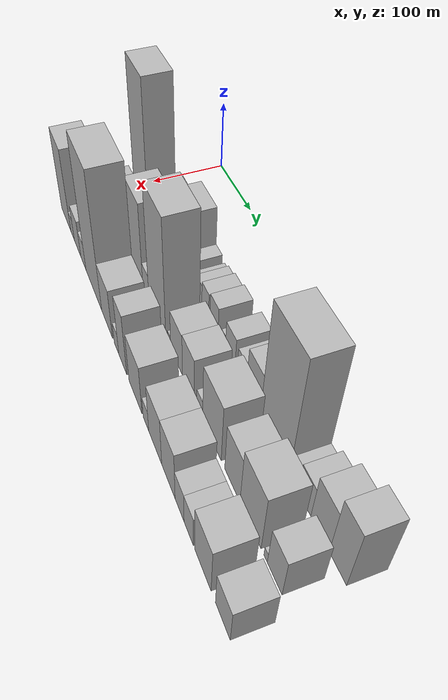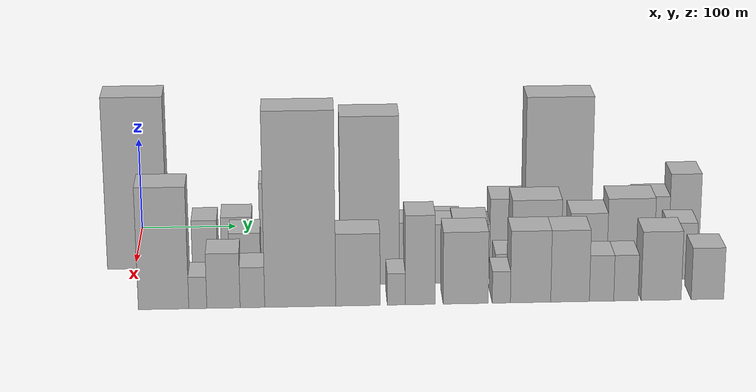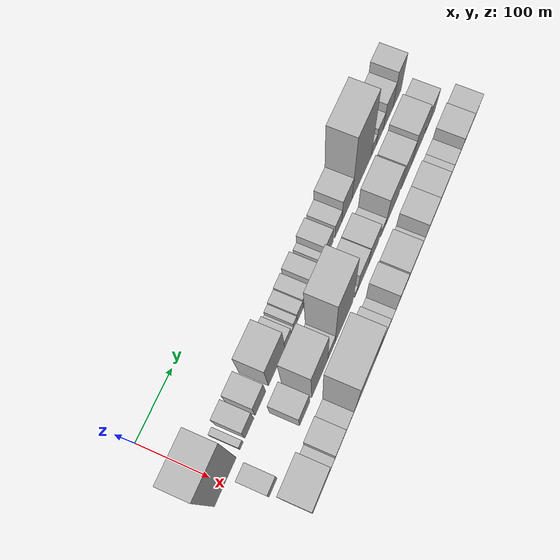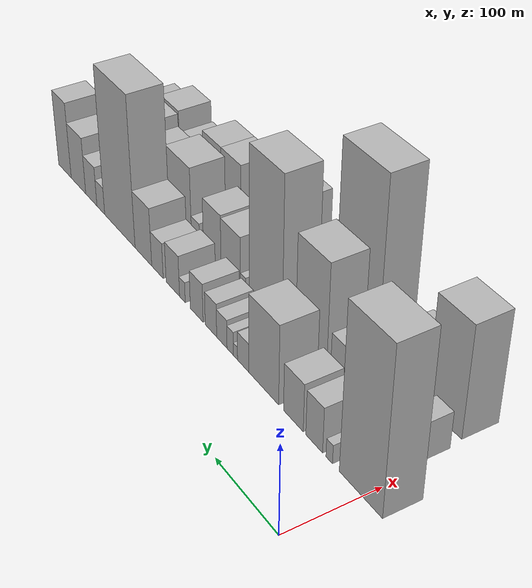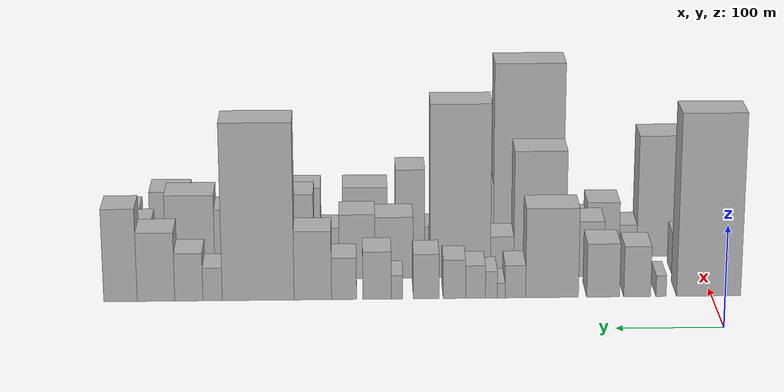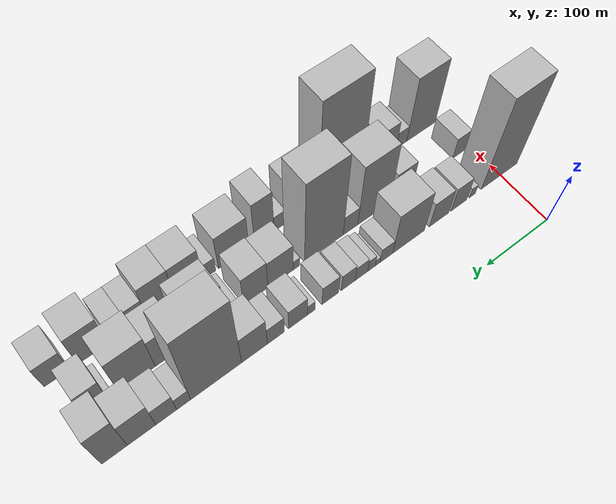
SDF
<sdf version="1.6">
 <world name="default">
  <model name="building_15">
   <static>1</static>
   <pose>100.0000 2.7650 0 0.000000 0.000000 0.000000</pose>
   <link name="link">
    <pose>0 0 91.50 0 0 0</pose>
    <collision name="collision"><geometry><box><size>40.0000 61.5131 183.0000</size></box></geometry></collision>
    <visual name="visual">
     <cast_shadows>0</cast_shadows>
     <geometry><box><size>40.0000 61.5131 183.0000</size></box></geometry>
     <material>
      <script>
       <uri>model://HANNAS_wall/materials/scripts</uri>
       <uri>model://HANNAS_wall/materials/textures</uri>
       <name>vrc/HANNAS_wall</name>
      </script>
     </material>
    </visual>
   </link>
  </model>
  <model name="building_16">
   <static>1</static>
   <pose>100.0000 48.4366 0 0.000000 0.000000 0.000000</pose>
   <link name="link">
    <pose>0 0 10.50 0 0 0</pose>
    <collision name="collision"><geometry><box><size>40.0000 9.8300 21.0000</size></box></geometry></collision>
    <visual name="visual">
     <cast_shadows>0</cast_shadows>
     <geometry><box><size>40.0000 9.8300 21.0000</size></box></geometry>
     <material>
      <script>
       <uri>model://HANNAS_wall/materials/scripts</uri>
       <uri>model://HANNAS_wall/materials/textures</uri>
       <name>vrc/HANNAS_wall</name>
      </script>
     </material>
    </visual>
   </link>
  </model>
  <model name="building_17">
   <static>1</static>
   <pose>100.0000 71.2778 0 0.000000 0.000000 0.000000</pose>
   <link name="link">
    <pose>0 0 25.50 0 0 0</pose>
    <collision name="collision"><geometry><box><size>40.0000 25.8524 51.0000</size></box></geometry></collision>
    <visual name="visual">
     <cast_shadows>0</cast_shadows>
     <geometry><box><size>40.0000 25.8524 51.0000</size></box></geometry>
     <material>
      <script>
       <uri>model://HANNAS_wall/materials/scripts</uri>
       <uri>model://HANNAS_wall/materials/textures</uri>
       <name>vrc/HANNAS_wall</name>
      </script>
     </material>
    </visual>
   </link>
  </model>
  <model name="building_18">
   <static>1</static>
   <pose>100.0000 103.9225 0 0.000000 0.000000 0.000000</pose>
   <link name="link">
    <pose>0 0 27.00 0 0 0</pose>
    <collision name="collision"><geometry><box><size>40.0000 31.4371 54.0000</size></box></geometry></collision>
    <visual name="visual">
     <cast_shadows>0</cast_shadows>
     <geometry><box><size>40.0000 31.4371 54.0000</size></box></geometry>
     <material>
      <script>
       <uri>model://HANNAS_wall/materials/scripts</uri>
       <uri>model://HANNAS_wall/materials/textures</uri>
       <name>vrc/HANNAS_wall</name>
      </script>
     </material>
    </visual>
   </link>
  </model>
  <model name="building_19">
   <static>1</static>
   <pose>100.0000 152.8931 0 0.000000 0.000000 0.000000</pose>
   <link name="link">
    <pose>0 0 45.00 0 0 0</pose>
    <collision name="collision"><geometry><box><size>40.0000 50.5041 90.0000</size></box></geometry></collision>
    <visual name="visual">
     <cast_shadows>0</cast_shadows>
     <geometry><box><size>40.0000 50.5041 90.0000</size></box></geometry>
     <material>
      <script>
       <uri>model://HANNAS_wall/materials/scripts</uri>
       <uri>model://HANNAS_wall/materials/textures</uri>
       <name>vrc/HANNAS_wall</name>
      </script>
     </material>
    </visual>
   </link>
  </model>
  <model name="building_20">
   <static>1</static>
   <pose>100.0000 187.9797 0 0.000000 0.000000 0.000000</pose>
   <link name="link">
    <pose>0 0 16.50 0 0 0</pose>
    <collision name="collision"><geometry><box><size>40.0000 19.6692 33.0000</size></box></geometry></collision>
    <visual name="visual">
     <cast_shadows>0</cast_shadows>
     <geometry><box><size>40.0000 19.6692 33.0000</size></box></geometry>
     <material>
      <script>
       <uri>model://HANNAS_wall/materials/scripts</uri>
       <uri>model://HANNAS_wall/materials/textures</uri>
       <name>vrc/HANNAS_wall</name>
      </script>
     </material>
    </visual>
   </link>
  </model>
  <model name="building_21">
   <static>1</static>
   <pose>100.0000 201.5192 0 0.000000 0.000000 0.000000</pose>
   <link name="link">
    <pose>0 0 7.50 0 0 0</pose>
    <collision name="collision"><geometry><box><size>40.0000 7.4098 15.0000</size></box></geometry></collision>
    <visual name="visual">
     <cast_shadows>0</cast_shadows>
     <geometry><box><size>40.0000 7.4098 15.0000</size></box></geometry>
     <material>
      <script>
       <uri>model://HANNAS_wall/materials/scripts</uri>
       <uri>model://HANNAS_wall/materials/textures</uri>
       <name>vrc/HANNAS_wall</name>
      </script>
     </material>
    </visual>
   </link>
  </model>
  <model name="building_22">
   <static>1</static>
   <pose>100.0000 210.9200 0 0.000000 0.000000 0.000000</pose>
   <link name="link">
    <pose>0 0 13.50 0 0 0</pose>
    <collision name="collision"><geometry><box><size>40.0000 11.3917 27.0000</size></box></geometry></collision>
    <visual name="visual">
     <cast_shadows>0</cast_shadows>
     <geometry><box><size>40.0000 11.3917 27.0000</size></box></geometry>
     <material>
      <script>
       <uri>model://HANNAS_wall/materials/scripts</uri>
       <uri>model://HANNAS_wall/materials/textures</uri>
       <name>vrc/HANNAS_wall</name>
      </script>
     </material>
    </visual>
   </link>
  </model>
  <model name="building_23">
   <static>1</static>
   <pose>100.0000 226.0352 0 0.000000 0.000000 0.000000</pose>
   <link name="link">
    <pose>0 0 16.50 0 0 0</pose>
    <collision name="collision"><geometry><box><size>40.0000 18.8387 33.0000</size></box></geometry></collision>
    <visual name="visual">
     <cast_shadows>0</cast_shadows>
     <geometry><box><size>40.0000 18.8387 33.0000</size></box></geometry>
     <material>
      <script>
       <uri>model://HANNAS_wall/materials/scripts</uri>
       <uri>model://HANNAS_wall/materials/textures</uri>
       <name>vrc/HANNAS_wall</name>
      </script>
     </material>
    </visual>
   </link>
  </model>
  <model name="building_24">
   <static>1</static>
   <pose>100.0000 246.1372 0 0.000000 0.000000 0.000000</pose>
   <link name="link">
    <pose>0 0 19.50 0 0 0</pose>
    <collision name="collision"><geometry><box><size>40.0000 21.3654 39.0000</size></box></geometry></collision>
    <visual name="visual">
     <cast_shadows>0</cast_shadows>
     <geometry><box><size>40.0000 21.3654 39.0000</size></box></geometry>
     <material>
      <script>
       <uri>model://HANNAS_wall/materials/scripts</uri>
       <uri>model://HANNAS_wall/materials/textures</uri>
       <name>vrc/HANNAS_wall</name>
      </script>
     </material>
    </visual>
   </link>
  </model>
  <model name="building_25">
   <static>1</static>
   <pose>100.0000 273.0623 0 0.000000 0.000000 0.000000</pose>
   <link name="link">
    <pose>0 0 22.50 0 0 0</pose>
    <collision name="collision"><geometry><box><size>40.0000 24.4847 45.0000</size></box></geometry></collision>
    <visual name="visual">
     <cast_shadows>0</cast_shadows>
     <geometry><box><size>40.0000 24.4847 45.0000</size></box></geometry>
     <material>
      <script>
       <uri>model://HANNAS_wall/materials/scripts</uri>
       <uri>model://HANNAS_wall/materials/textures</uri>
       <name>vrc/HANNAS_wall</name>
      </script>
     </material>
    </visual>
   </link>
  </model>
  <model name="building_26">
   <static>1</static>
   <pose>100.0000 300.9104 0 0.000000 0.000000 0.000000</pose>
   <link name="link">
    <pose>0 0 12.00 0 0 0</pose>
    <collision name="collision"><geometry><box><size>40.0000 11.2115 24.0000</size></box></geometry></collision>
    <visual name="visual">
     <cast_shadows>0</cast_shadows>
     <geometry><box><size>40.0000 11.2115 24.0000</size></box></geometry>
     <material>
      <script>
       <uri>model://HANNAS_wall/materials/scripts</uri>
       <uri>model://HANNAS_wall/materials/textures</uri>
       <name>vrc/HANNAS_wall</name>
      </script>
     </material>
    </visual>
   </link>
  </model>
  <model name="building_27">
   <static>1</static>
   <pose>100.0000 320.0140 0 0.000000 0.000000 0.000000</pose>
   <link name="link">
    <pose>0 0 24.00 0 0 0</pose>
    <collision name="collision"><geometry><box><size>40.0000 26.9957 48.0000</size></box></geometry></collision>
    <visual name="visual">
     <cast_shadows>0</cast_shadows>
     <geometry><box><size>40.0000 26.9957 48.0000</size></box></geometry>
     <material>
      <script>
       <uri>model://HANNAS_wall/materials/scripts</uri>
       <uri>model://HANNAS_wall/materials/textures</uri>
       <name>vrc/HANNAS_wall</name>
      </script>
     </material>
    </visual>
   </link>
  </model>
  <model name="building_28">
   <static>1</static>
   <pose>100.0000 351.4350 0 0.000000 0.000000 0.000000</pose>
   <link name="link">
    <pose>0 0 21.00 0 0 0</pose>
    <collision name="collision"><geometry><box><size>40.0000 23.8461 42.0000</size></box></geometry></collision>
    <visual name="visual">
     <cast_shadows>0</cast_shadows>
     <geometry><box><size>40.0000 23.8461 42.0000</size></box></geometry>
     <material>
      <script>
       <uri>model://HANNAS_wall/materials/scripts</uri>
       <uri>model://HANNAS_wall/materials/textures</uri>
       <name>vrc/HANNAS_wall</name>
      </script>
     </material>
    </visual>
   </link>
  </model>
  <model name="building_29">
   <static>1</static>
   <pose>100.0000 381.1314 0 0.000000 0.000000 0.000000</pose>
   <link name="link">
    <pose>0 0 34.50 0 0 0</pose>
    <collision name="collision"><geometry><box><size>40.0000 35.5467 69.0000</size></box></geometry></collision>
    <visual name="visual">
     <cast_shadows>0</cast_shadows>
     <geometry><box><size>40.0000 35.5467 69.0000</size></box></geometry>
     <material>
      <script>
       <uri>model://HANNAS_wall/materials/scripts</uri>
       <uri>model://HANNAS_wall/materials/textures</uri>
       <name>vrc/HANNAS_wall</name>
      </script>
     </material>
    </visual>
   </link>
  </model>
  <model name="building_30">
   <static>1</static>
   <pose>100.0000 433.1058 0 0.000000 0.000000 0.000000</pose>
   <link name="link">
    <pose>0 0 88.50 0 0 0</pose>
    <collision name="collision"><geometry><box><size>40.0000 68.4021 177.0000</size></box></geometry></collision>
    <visual name="visual">
     <cast_shadows>0</cast_shadows>
     <geometry><box><size>40.0000 68.4021 177.0000</size></box></geometry>
     <material>
      <script>
       <uri>model://HANNAS_wall/materials/scripts</uri>
       <uri>model://HANNAS_wall/materials/textures</uri>
       <name>vrc/HANNAS_wall</name>
      </script>
     </material>
    </visual>
   </link>
  </model>
  <model name="building_31">
   <static>1</static>
   <pose>100.0000 476.4380 0 0.000000 0.000000 0.000000</pose>
   <link name="link">
    <pose>0 0 16.50 0 0 0</pose>
    <collision name="collision"><geometry><box><size>40.0000 18.2624 33.0000</size></box></geometry></collision>
    <visual name="visual">
     <cast_shadows>0</cast_shadows>
     <geometry><box><size>40.0000 18.2624 33.0000</size></box></geometry>
     <material>
      <script>
       <uri>model://HANNAS_wall/materials/scripts</uri>
       <uri>model://HANNAS_wall/materials/textures</uri>
       <name>vrc/HANNAS_wall</name>
      </script>
     </material>
    </visual>
   </link>
  </model>
  <model name="building_32">
   <static>1</static>
   <pose>100.0000 498.9641 0 0.000000 0.000000 0.000000</pose>
   <link name="link">
    <pose>0 0 24.00 0 0 0</pose>
    <collision name="collision"><geometry><box><size>40.0000 26.7897 48.0000</size></box></geometry></collision>
    <visual name="visual">
     <cast_shadows>0</cast_shadows>
     <geometry><box><size>40.0000 26.7897 48.0000</size></box></geometry>
     <material>
      <script>
       <uri>model://HANNAS_wall/materials/scripts</uri>
       <uri>model://HANNAS_wall/materials/textures</uri>
       <name>vrc/HANNAS_wall</name>
      </script>
     </material>
    </visual>
   </link>
  </model>
  <model name="building_33">
   <static>1</static>
   <pose>100.0000 530.1919 0 0.000000 0.000000 0.000000</pose>
   <link name="link">
    <pose>0 0 34.50 0 0 0</pose>
    <collision name="collision"><geometry><box><size>40.0000 35.6658 69.0000</size></box></geometry></collision>
    <visual name="visual">
     <cast_shadows>0</cast_shadows>
     <geometry><box><size>40.0000 35.6658 69.0000</size></box></geometry>
     <material>
      <script>
       <uri>model://HANNAS_wall/materials/scripts</uri>
       <uri>model://HANNAS_wall/materials/textures</uri>
       <name>vrc/HANNAS_wall</name>
      </script>
     </material>
    </visual>
   </link>
  </model>
  <model name="building_34">
   <static>1</static>
   <pose>100.0000 563.8927 0 0.000000 0.000000 0.000000</pose>
   <link name="link">
    <pose>0 0 46.50 0 0 0</pose>
    <collision name="collision"><geometry><box><size>40.0000 31.7359 93.0000</size></box></geometry></collision>
    <visual name="visual">
     <cast_shadows>0</cast_shadows>
     <geometry><box><size>40.0000 31.7359 93.0000</size></box></geometry>
     <material>
      <script>
       <uri>model://HANNAS_wall/materials/scripts</uri>
       <uri>model://HANNAS_wall/materials/textures</uri>
       <name>vrc/HANNAS_wall</name>
      </script>
     </material>
    </visual>
   </link>
  </model>
  <model name="building_52">
   <static>1</static>
   <pose>155.0000 18.9682 0 0.000000 0.000000 0.000000</pose>
   <link name="link">
    <pose>0 0 21.00 0 0 0</pose>
    <collision name="collision"><geometry><box><size>40.0000 23.5320 42.0000</size></box></geometry></collision>
    <visual name="visual">
     <cast_shadows>0</cast_shadows>
     <geometry><box><size>40.0000 23.5320 42.0000</size></box></geometry>
     <material>
      <script>
       <uri>model://HANNAS_wall/materials/scripts</uri>
       <uri>model://HANNAS_wall/materials/textures</uri>
       <name>vrc/HANNAS_wall</name>
      </script>
     </material>
    </visual>
   </link>
  </model>
  <model name="building_53">
   <static>1</static>
   <pose>155.0000 113.4926 0 0.000000 0.000000 0.000000</pose>
   <link name="link">
    <pose>0 0 28.50 0 0 0</pose>
    <collision name="collision"><geometry><box><size>40.0000 31.1722 57.0000</size></box></geometry></collision>
    <visual name="visual">
     <cast_shadows>0</cast_shadows>
     <geometry><box><size>40.0000 31.1722 57.0000</size></box></geometry>
     <material>
      <script>
       <uri>model://HANNAS_wall/materials/scripts</uri>
       <uri>model://HANNAS_wall/materials/textures</uri>
       <name>vrc/HANNAS_wall</name>
      </script>
     </material>
    </visual>
   </link>
  </model>
  <model name="building_54">
   <static>1</static>
   <pose>155.0000 160.6011 0 0.000000 0.000000 0.000000</pose>
   <link name="link">
    <pose>0 0 64.50 0 0 0</pose>
    <collision name="collision"><geometry><box><size>40.0000 51.0449 129.0000</size></box></geometry></collision>
    <visual name="visual">
     <cast_shadows>0</cast_shadows>
     <geometry><box><size>40.0000 51.0449 129.0000</size></box></geometry>
     <material>
      <script>
       <uri>model://HANNAS_wall/materials/scripts</uri>
       <uri>model://HANNAS_wall/materials/textures</uri>
       <name>vrc/HANNAS_wall</name>
      </script>
     </material>
    </visual>
   </link>
  </model>
  <model name="building_55">
   <static>1</static>
   <pose>155.0000 197.4660 0 0.000000 0.000000 0.000000</pose>
   <link name="link">
    <pose>0 0 21.00 0 0 0</pose>
    <collision name="collision"><geometry><box><size>40.0000 22.6850 42.0000</size></box></geometry></collision>
    <visual name="visual">
     <cast_shadows>0</cast_shadows>
     <geometry><box><size>40.0000 22.6850 42.0000</size></box></geometry>
     <material>
      <script>
       <uri>model://HANNAS_wall/materials/scripts</uri>
       <uri>model://HANNAS_wall/materials/textures</uri>
       <name>vrc/HANNAS_wall</name>
      </script>
     </material>
    </visual>
   </link>
  </model>
  <model name="building_56">
   <static>1</static>
   <pose>155.0000 238.2118 0 0.000000 0.000000 0.000000</pose>
   <link name="link">
    <pose>0 0 88.50 0 0 0</pose>
    <collision name="collision"><geometry><box><size>40.0000 58.8065 177.0000</size></box></geometry></collision>
    <visual name="visual">
     <cast_shadows>0</cast_shadows>
     <geometry><box><size>40.0000 58.8065 177.0000</size></box></geometry>
     <material>
      <script>
       <uri>model://HANNAS_wall/materials/scripts</uri>
       <uri>model://HANNAS_wall/materials/textures</uri>
       <name>vrc/HANNAS_wall</name>
      </script>
     </material>
    </visual>
   </link>
  </model>
  <model name="building_57">
   <static>1</static>
   <pose>155.0000 279.4679 0 0.000000 0.000000 0.000000</pose>
   <link name="link">
    <pose>0 0 10.50 0 0 0</pose>
    <collision name="collision"><geometry><box><size>40.0000 9.7056 21.0000</size></box></geometry></collision>
    <visual name="visual">
     <cast_shadows>0</cast_shadows>
     <geometry><box><size>40.0000 9.7056 21.0000</size></box></geometry>
     <material>
      <script>
       <uri>model://HANNAS_wall/materials/scripts</uri>
       <uri>model://HANNAS_wall/materials/textures</uri>
       <name>vrc/HANNAS_wall</name>
      </script>
     </material>
    </visual>
   </link>
  </model>
  <model name="building_58">
   <static>1</static>
   <pose>155.0000 302.8586 0 0.000000 0.000000 0.000000</pose>
   <link name="link">
    <pose>0 0 31.50 0 0 0</pose>
    <collision name="collision"><geometry><box><size>40.0000 37.0757 63.0000</size></box></geometry></collision>
    <visual name="visual">
     <cast_shadows>0</cast_shadows>
     <geometry><box><size>40.0000 37.0757 63.0000</size></box></geometry>
     <material>
      <script>
       <uri>model://HANNAS_wall/materials/scripts</uri>
       <uri>model://HANNAS_wall/materials/textures</uri>
       <name>vrc/HANNAS_wall</name>
      </script>
     </material>
    </visual>
   </link>
  </model>
  <model name="building_59">
   <static>1</static>
   <pose>155.0000 338.8848 0 0.000000 0.000000 0.000000</pose>
   <link name="link">
    <pose>0 0 33.00 0 0 0</pose>
    <collision name="collision"><geometry><box><size>40.0000 34.9767 66.0000</size></box></geometry></collision>
    <visual name="visual">
     <cast_shadows>0</cast_shadows>
     <geometry><box><size>40.0000 34.9767 66.0000</size></box></geometry>
     <material>
      <script>
       <uri>model://HANNAS_wall/materials/scripts</uri>
       <uri>model://HANNAS_wall/materials/textures</uri>
       <name>vrc/HANNAS_wall</name>
      </script>
     </material>
    </visual>
   </link>
  </model>
  <model name="building_60">
   <static>1</static>
   <pose>155.0000 372.5903 0 0.000000 0.000000 0.000000</pose>
   <link name="link">
    <pose>0 0 15.00 0 0 0</pose>
    <collision name="collision"><geometry><box><size>40.0000 16.4343 30.0000</size></box></geometry></collision>
    <visual name="visual">
     <cast_shadows>0</cast_shadows>
     <geometry><box><size>40.0000 16.4343 30.0000</size></box></geometry>
     <material>
      <script>
       <uri>model://HANNAS_wall/materials/scripts</uri>
       <uri>model://HANNAS_wall/materials/textures</uri>
       <name>vrc/HANNAS_wall</name>
      </script>
     </material>
    </visual>
   </link>
  </model>
  <model name="building_61">
   <static>1</static>
   <pose>155.0000 405.7149 0 0.000000 0.000000 0.000000</pose>
   <link name="link">
    <pose>0 0 43.50 0 0 0</pose>
    <collision name="collision"><geometry><box><size>40.0000 49.8149 87.0000</size></box></geometry></collision>
    <visual name="visual">
     <cast_shadows>0</cast_shadows>
     <geometry><box><size>40.0000 49.8149 87.0000</size></box></geometry>
     <material>
      <script>
       <uri>model://HANNAS_wall/materials/scripts</uri>
       <uri>model://HANNAS_wall/materials/textures</uri>
       <name>vrc/HANNAS_wall</name>
      </script>
     </material>
    </visual>
   </link>
  </model>
  <model name="building_62">
   <static>1</static>
   <pose>155.0000 458.2369 0 0.000000 0.000000 0.000000</pose>
   <link name="link">
    <pose>0 0 36.00 0 0 0</pose>
    <collision name="collision"><geometry><box><size>40.0000 37.2291 72.0000</size></box></geometry></collision>
    <visual name="visual">
     <cast_shadows>0</cast_shadows>
     <geometry><box><size>40.0000 37.2291 72.0000</size></box></geometry>
     <material>
      <script>
       <uri>model://HANNAS_wall/materials/scripts</uri>
       <uri>model://HANNAS_wall/materials/textures</uri>
       <name>vrc/HANNAS_wall</name>
      </script>
     </material>
    </visual>
   </link>
  </model>
  <model name="building_63">
   <static>1</static>
   <pose>155.0000 500.6431 0 0.000000 0.000000 0.000000</pose>
   <link name="link">
    <pose>0 0 43.50 0 0 0</pose>
    <collision name="collision"><geometry><box><size>40.0000 47.5834 87.0000</size></box></geometry></collision>
    <visual name="visual">
     <cast_shadows>0</cast_shadows>
     <geometry><box><size>40.0000 47.5834 87.0000</size></box></geometry>
     <material>
      <script>
       <uri>model://HANNAS_wall/materials/scripts</uri>
       <uri>model://HANNAS_wall/materials/textures</uri>
       <name>vrc/HANNAS_wall</name>
      </script>
     </material>
    </visual>
   </link>
  </model>
  <model name="building_64">
   <static>1</static>
   <pose>155.0000 534.0245 0 0.000000 0.000000 0.000000</pose>
   <link name="link">
    <pose>0 0 7.50 0 0 0</pose>
    <collision name="collision"><geometry><box><size>40.0000 7.1794 15.0000</size></box></geometry></collision>
    <visual name="visual">
     <cast_shadows>0</cast_shadows>
     <geometry><box><size>40.0000 7.1794 15.0000</size></box></geometry>
     <material>
      <script>
       <uri>model://HANNAS_wall/materials/scripts</uri>
       <uri>model://HANNAS_wall/materials/textures</uri>
       <name>vrc/HANNAS_wall</name>
      </script>
     </material>
    </visual>
   </link>
  </model>
  <model name="building_65">
   <static>1</static>
   <pose>155.0000 552.6448 0 0.000000 0.000000 0.000000</pose>
   <link name="link">
    <pose>0 0 30.00 0 0 0</pose>
    <collision name="collision"><geometry><box><size>40.0000 30.0610 60.0000</size></box></geometry></collision>
    <visual name="visual">
     <cast_shadows>0</cast_shadows>
     <geometry><box><size>40.0000 30.0610 60.0000</size></box></geometry>
     <material>
      <script>
       <uri>model://HANNAS_wall/materials/scripts</uri>
       <uri>model://HANNAS_wall/materials/textures</uri>
       <name>vrc/HANNAS_wall</name>
      </script>
     </material>
    </visual>
   </link>
  </model>
  <model name="building_84">
   <static>1</static>
   <pose>210.0000 34.9452 0 0.000000 0.000000 0.000000</pose>
   <link name="link">
    <pose>0 0 63.00 0 0 0</pose>
    <collision name="collision"><geometry><box><size>40.0000 49.0628 126.0000</size></box></geometry></collision>
    <visual name="visual">
     <cast_shadows>0</cast_shadows>
     <geometry><box><size>40.0000 49.0628 126.0000</size></box></geometry>
     <material>
      <script>
       <uri>model://HANNAS_wall/materials/scripts</uri>
       <uri>model://HANNAS_wall/materials/textures</uri>
       <name>vrc/HANNAS_wall</name>
      </script>
     </material>
    </visual>
   </link>
  </model>
  <model name="building_85">
   <static>1</static>
   <pose>210.0000 68.2569 0 0.000000 0.000000 0.000000</pose>
   <link name="link">
    <pose>0 0 16.50 0 0 0</pose>
    <collision name="collision"><geometry><box><size>40.0000 17.5605 33.0000</size></box></geometry></collision>
    <visual name="visual">
     <cast_shadows>0</cast_shadows>
     <geometry><box><size>40.0000 17.5605 33.0000</size></box></geometry>
     <material>
      <script>
       <uri>model://HANNAS_wall/materials/scripts</uri>
       <uri>model://HANNAS_wall/materials/textures</uri>
       <name>vrc/HANNAS_wall</name>
      </script>
     </material>
    </visual>
   </link>
  </model>
  <model name="building_86">
   <static>1</static>
   <pose>210.0000 93.2502 0 0.000000 0.000000 0.000000</pose>
   <link name="link">
    <pose>0 0 28.50 0 0 0</pose>
    <collision name="collision"><geometry><box><size>40.0000 32.4262 57.0000</size></box></geometry></collision>
    <visual name="visual">
     <cast_shadows>0</cast_shadows>
     <geometry><box><size>40.0000 32.4262 57.0000</size></box></geometry>
     <material>
      <script>
       <uri>model://HANNAS_wall/materials/scripts</uri>
       <uri>model://HANNAS_wall/materials/textures</uri>
       <name>vrc/HANNAS_wall</name>
      </script>
     </material>
    </visual>
   </link>
  </model>
  <model name="building_87">
   <static>1</static>
   <pose>210.0000 121.4754 0 0.000000 0.000000 0.000000</pose>
   <link name="link">
    <pose>0 0 21.00 0 0 0</pose>
    <collision name="collision"><geometry><box><size>40.0000 24.0241 42.0000</size></box></geometry></collision>
    <visual name="visual">
     <cast_shadows>0</cast_shadows>
     <geometry><box><size>40.0000 24.0241 42.0000</size></box></geometry>
     <material>
      <script>
       <uri>model://HANNAS_wall/materials/scripts</uri>
       <uri>model://HANNAS_wall/materials/textures</uri>
       <name>vrc/HANNAS_wall</name>
      </script>
     </material>
    </visual>
   </link>
  </model>
  <model name="building_88">
   <static>1</static>
   <pose>210.0000 168.2742 0 0.000000 0.000000 0.000000</pose>
   <link name="link">
    <pose>0 0 100.50 0 0 0</pose>
    <collision name="collision"><geometry><box><size>40.0000 69.5734 201.0000</size></box></geometry></collision>
    <visual name="visual">
     <cast_shadows>0</cast_shadows>
     <geometry><box><size>40.0000 69.5734 201.0000</size></box></geometry>
     <material>
      <script>
       <uri>model://HANNAS_wall/materials/scripts</uri>
       <uri>model://HANNAS_wall/materials/textures</uri>
       <name>vrc/HANNAS_wall</name>
      </script>
     </material>
    </visual>
   </link>
  </model>
  <model name="building_89">
   <static>1</static>
   <pose>210.0000 224.8170 0 0.000000 0.000000 0.000000</pose>
   <link name="link">
    <pose>0 0 37.50 0 0 0</pose>
    <collision name="collision"><geometry><box><size>40.0000 43.5122 75.0000</size></box></geometry></collision>
    <visual name="visual">
     <cast_shadows>0</cast_shadows>
     <geometry><box><size>40.0000 43.5122 75.0000</size></box></geometry>
     <material>
      <script>
       <uri>model://HANNAS_wall/materials/scripts</uri>
       <uri>model://HANNAS_wall/materials/textures</uri>
       <name>vrc/HANNAS_wall</name>
      </script>
     </material>
    </visual>
   </link>
  </model>
  <model name="building_90">
   <static>1</static>
   <pose>210.0000 262.4309 0 0.000000 0.000000 0.000000</pose>
   <link name="link">
    <pose>0 0 16.50 0 0 0</pose>
    <collision name="collision"><geometry><box><size>40.0000 17.7157 33.0000</size></box></geometry></collision>
    <visual name="visual">
     <cast_shadows>0</cast_shadows>
     <geometry><box><size>40.0000 17.7157 33.0000</size></box></geometry>
     <material>
      <script>
       <uri>model://HANNAS_wall/materials/scripts</uri>
       <uri>model://HANNAS_wall/materials/textures</uri>
       <name>vrc/HANNAS_wall</name>
      </script>
     </material>
    </visual>
   </link>
  </model>
  <model name="building_91">
   <static>1</static>
   <pose>210.0000 285.8674 0 0.000000 0.000000 0.000000</pose>
   <link name="link">
    <pose>0 0 46.50 0 0 0</pose>
    <collision name="collision"><geometry><box><size>40.0000 29.1573 93.0000</size></box></geometry></collision>
    <visual name="visual">
     <cast_shadows>0</cast_shadows>
     <geometry><box><size>40.0000 29.1573 93.0000</size></box></geometry>
     <material>
      <script>
       <uri>model://HANNAS_wall/materials/scripts</uri>
       <uri>model://HANNAS_wall/materials/textures</uri>
       <name>vrc/HANNAS_wall</name>
      </script>
     </material>
    </visual>
   </link>
  </model>
  <model name="building_92">
   <static>1</static>
   <pose>210.0000 330.6069 0 0.000000 0.000000 0.000000</pose>
   <link name="link">
    <pose>0 0 37.50 0 0 0</pose>
    <collision name="collision"><geometry><box><size>40.0000 44.3217 75.0000</size></box></geometry></collision>
    <visual name="visual">
     <cast_shadows>0</cast_shadows>
     <geometry><box><size>40.0000 44.3217 75.0000</size></box></geometry>
     <material>
      <script>
       <uri>model://HANNAS_wall/materials/scripts</uri>
       <uri>model://HANNAS_wall/materials/textures</uri>
       <name>vrc/HANNAS_wall</name>
      </script>
     </material>
    </visual>
   </link>
  </model>
  <model name="building_93">
   <static>1</static>
   <pose>210.0000 365.7283 0 0.000000 0.000000 0.000000</pose>
   <link name="link">
    <pose>0 0 16.50 0 0 0</pose>
    <collision name="collision"><geometry><box><size>40.0000 17.9212 33.0000</size></box></geometry></collision>
    <visual name="visual">
     <cast_shadows>0</cast_shadows>
     <geometry><box><size>40.0000 17.9212 33.0000</size></box></geometry>
     <material>
      <script>
       <uri>model://HANNAS_wall/materials/scripts</uri>
       <uri>model://HANNAS_wall/materials/textures</uri>
       <name>vrc/HANNAS_wall</name>
      </script>
     </material>
    </visual>
   </link>
  </model>
  <model name="building_94">
   <static>1</static>
   <pose>210.0000 394.5950 0 0.000000 0.000000 0.000000</pose>
   <link name="link">
    <pose>0 0 37.50 0 0 0</pose>
    <collision name="collision"><geometry><box><size>40.0000 39.8123 75.0000</size></box></geometry></collision>
    <visual name="visual">
     <cast_shadows>0</cast_shadows>
     <geometry><box><size>40.0000 39.8123 75.0000</size></box></geometry>
     <material>
      <script>
       <uri>model://HANNAS_wall/materials/scripts</uri>
       <uri>model://HANNAS_wall/materials/textures</uri>
       <name>vrc/HANNAS_wall</name>
      </script>
     </material>
    </visual>
   </link>
  </model>
  <model name="building_95">
   <static>1</static>
   <pose>210.0000 433.5968 0 0.000000 0.000000 0.000000</pose>
   <link name="link">
    <pose>0 0 37.50 0 0 0</pose>
    <collision name="collision"><geometry><box><size>40.0000 38.1912 75.0000</size></box></geometry></collision>
    <visual name="visual">
     <cast_shadows>0</cast_shadows>
     <geometry><box><size>40.0000 38.1912 75.0000</size></box></geometry>
     <material>
      <script>
       <uri>model://HANNAS_wall/materials/scripts</uri>
       <uri>model://HANNAS_wall/materials/textures</uri>
       <name>vrc/HANNAS_wall</name>
      </script>
     </material>
    </visual>
   </link>
  </model>
  <model name="building_96">
   <static>1</static>
   <pose>210.0000 464.7494 0 0.000000 0.000000 0.000000</pose>
   <link name="link">
    <pose>0 0 24.00 0 0 0</pose>
    <collision name="collision"><geometry><box><size>40.0000 24.1140 48.0000</size></box></geometry></collision>
    <visual name="visual">
     <cast_shadows>0</cast_shadows>
     <geometry><box><size>40.0000 24.1140 48.0000</size></box></geometry>
     <material>
      <script>
       <uri>model://HANNAS_wall/materials/scripts</uri>
       <uri>model://HANNAS_wall/materials/textures</uri>
       <name>vrc/HANNAS_wall</name>
      </script>
     </material>
    </visual>
   </link>
  </model>
  <model name="building_97">
   <static>1</static>
   <pose>210.0000 488.8603 0 0.000000 0.000000 0.000000</pose>
   <link name="link">
    <pose>0 0 24.00 0 0 0</pose>
    <collision name="collision"><geometry><box><size>40.0000 24.1077 48.0000</size></box></geometry></collision>
    <visual name="visual">
     <cast_shadows>0</cast_shadows>
     <geometry><box><size>40.0000 24.1077 48.0000</size></box></geometry>
     <material>
      <script>
       <uri>model://HANNAS_wall/materials/scripts</uri>
       <uri>model://HANNAS_wall/materials/textures</uri>
       <name>vrc/HANNAS_wall</name>
      </script>
     </material>
    </visual>
   </link>
  </model>
  <model name="building_98">
   <static>1</static>
   <pose>210.0000 523.7863 0 0.000000 0.000000 0.000000</pose>
   <link name="link">
    <pose>0 0 36.00 0 0 0</pose>
    <collision name="collision"><geometry><box><size>40.0000 39.7443 72.0000</size></box></geometry></collision>
    <visual name="visual">
     <cast_shadows>0</cast_shadows>
     <geometry><box><size>40.0000 39.7443 72.0000</size></box></geometry>
     <material>
      <script>
       <uri>model://HANNAS_wall/materials/scripts</uri>
       <uri>model://HANNAS_wall/materials/textures</uri>
       <name>vrc/HANNAS_wall</name>
      </script>
     </material>
    </visual>
   </link>
  </model>
  <model name="building_99">
   <static>1</static>
   <pose>210.0000 569.8371 0 0.000000 0.000000 0.000000</pose>
   <link name="link">
    <pose>0 0 27.00 0 0 0</pose>
    <collision name="collision"><geometry><box><size>40.0000 32.3574 54.0000</size></box></geometry></collision>
    <visual name="visual">
     <cast_shadows>0</cast_shadows>
     <geometry><box><size>40.0000 32.3574 54.0000</size></box></geometry>
     <material>
      <script>
       <uri>model://HANNAS_wall/materials/scripts</uri>
       <uri>model://HANNAS_wall/materials/textures</uri>
       <name>vrc/HANNAS_wall</name>
      </script>
     </material>
    </visual>
   </link>
  </model>
 </world>
</sdf>
